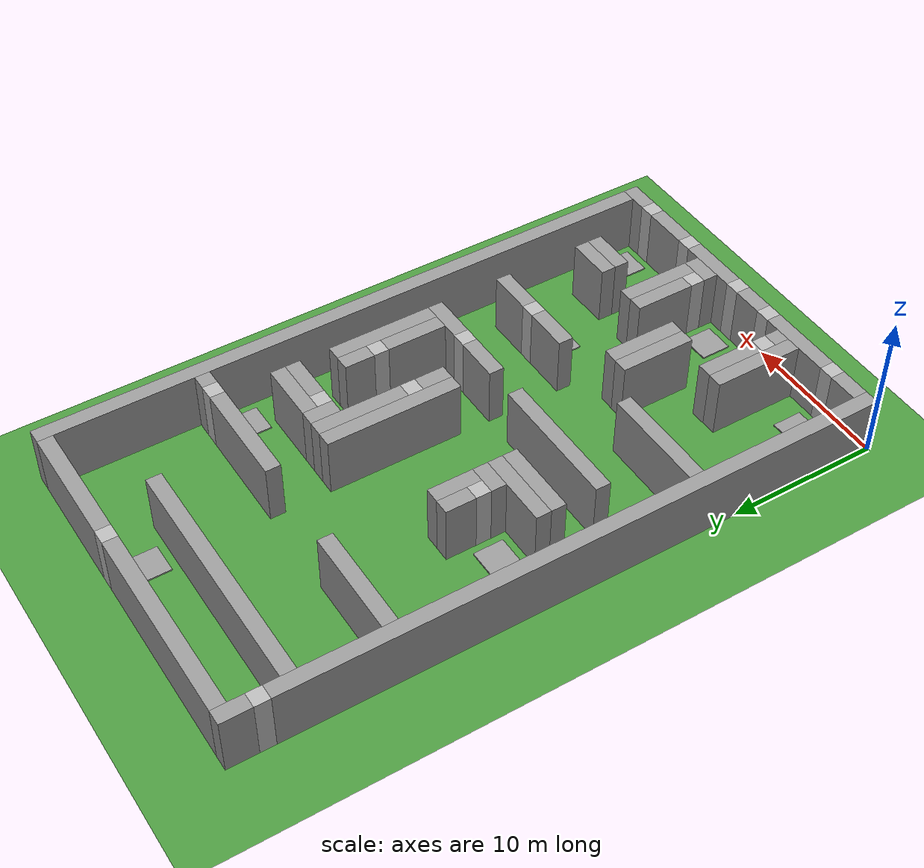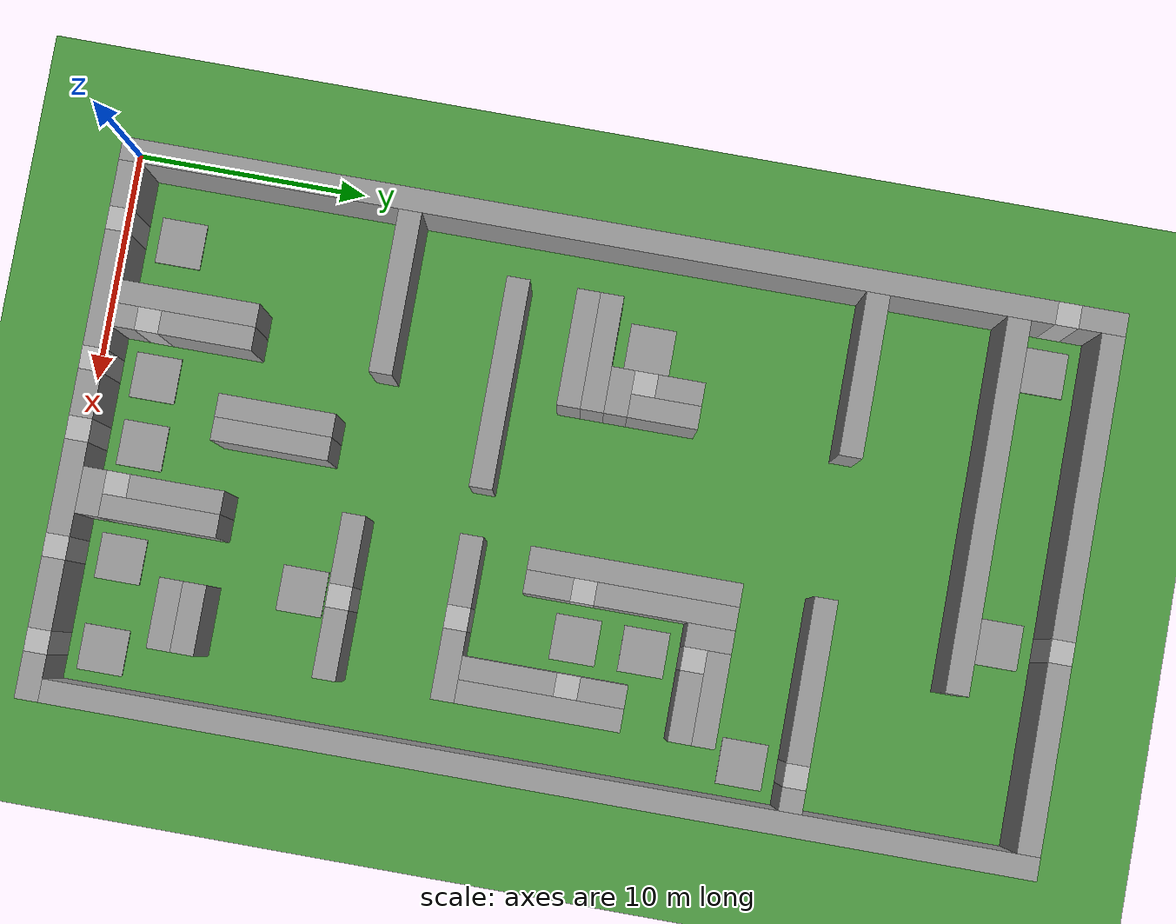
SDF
<sdf version="1.6">
 <world name="default">
  <light name="sun" type="directional">
   <pose>0 0 10 0 -0 0</pose>
   <diffuse>0.8 0.8 0.8 1</diffuse>
   <specular>0.1 0.1 0.1 1</specular>
   <attenuation>
    <range>1000</range>
    <constant>0.9</constant>
    <linear>0.01</linear>
    <quadratic>0.001</quadratic>
   </attenuation>
   <direction>-0.5 0.5 -1</direction>
  </light>
  <model name="ground_plane">
   <static>1</static>
   <link name="link">
    <collision name="collision">
     <geometry><plane><normal>0 0 1</normal><size>100 100</size></plane></geometry>
     <surface><friction><ode><mu>100</mu><mu2>50</mu2></ode></friction></surface>
    </collision>
    <visual name="visual">
     <cast_shadows>0</cast_shadows>
     <geometry><plane><normal>0 0 1</normal><size>100 100</size></plane></geometry>
     <material>
      <script><uri>file://media/materials/scripts/gazebo.material</uri><name>Gazebo/Grass</name></script>
     </material>
    </visual>
   </link>
  </model>
  <gravity>0 0 -9.8</gravity>
  <magnetic_field>6e-06 2.3e-05 -4.2e-05</magnetic_field>
  <atmosphere type="adiabatic"/>
  <physics name="default_physics" default="0" type="ode">
   <max_step_size>0.004</max_step_size>
   <real_time_factor>1</real_time_factor>
   <real_time_update_rate>250</real_time_update_rate>
  </physics>
  <scene><ambient>0.4 0.4 0.4 1</ambient><background>0.7 0.7 0.7 1</background><shadows>1</shadows></scene>
  <spherical_coordinates>
   <surface_model>EARTH_WGS84</surface_model>
   <latitude_deg>0</latitude_deg>
   <longitude_deg>0</longitude_deg>
   <elevation>0</elevation>
   <heading_deg>0</heading_deg>
  </spherical_coordinates>
  <model name="wall">
   <pose>0.500000 20.000000 2 0 0 0</pose>
   <static>1</static>
   <link name="wall-link">
    <collision name="collision"><geometry><box><size>1 40 4</size></box></geometry></collision>
    <visual name="visual">
     <geometry><box><size>1 40 4</size></box></geometry>
     <material>
      <script><name>Gazebo/Grey</name><uri>file://media/materials/scripts/gazebo.material</uri></script>
     </material>
    </visual>
    <gravity>0</gravity>
   </link>
  </model>
  <model name="wall">
   <pose>2.000000 0.500000 2 0 0 0</pose>
   <static>1</static>
   <link name="wall-link">
    <collision name="collision"><geometry><box><size>2 1 4</size></box></geometry></collision>
    <visual name="visual">
     <geometry><box><size>2 1 4</size></box></geometry>
     <material>
      <script><name>Gazebo/Grey</name><uri>file://media/materials/scripts/gazebo.material</uri></script>
     </material>
    </visual>
    <gravity>0</gravity>
   </link>
  </model>
  <model name="wall">
   <pose>6.500000 0.500000 2 0 0 0</pose>
   <static>1</static>
   <link name="wall-link">
    <collision name="collision"><geometry><box><size>5 1 4</size></box></geometry></collision>
    <visual name="visual">
     <geometry><box><size>5 1 4</size></box></geometry>
     <material>
      <script><name>Gazebo/Grey</name><uri>file://media/materials/scripts/gazebo.material</uri></script>
     </material>
    </visual>
    <gravity>0</gravity>
   </link>
  </model>
  <model name="wall">
   <pose>11.000000 0.500000 2 0 0 0</pose>
   <static>1</static>
   <link name="wall-link">
    <collision name="collision"><geometry><box><size>2 1 4</size></box></geometry></collision>
    <visual name="visual">
     <geometry><box><size>2 1 4</size></box></geometry>
     <material>
      <script><name>Gazebo/Grey</name><uri>file://media/materials/scripts/gazebo.material</uri></script>
     </material>
    </visual>
    <gravity>0</gravity>
   </link>
  </model>
  <model name="wall">
   <pose>15.000000 0.500000 2 0 0 0</pose>
   <static>1</static>
   <link name="wall-link">
    <collision name="collision"><geometry><box><size>4 1 4</size></box></geometry></collision>
    <visual name="visual">
     <geometry><box><size>4 1 4</size></box></geometry>
     <material>
      <script><name>Gazebo/Grey</name><uri>file://media/materials/scripts/gazebo.material</uri></script>
     </material>
    </visual>
    <gravity>0</gravity>
   </link>
  </model>
  <model name="wall">
   <pose>19.500000 0.500000 2 0 0 0</pose>
   <static>1</static>
   <link name="wall-link">
    <collision name="collision"><geometry><box><size>3 1 4</size></box></geometry></collision>
    <visual name="visual">
     <geometry><box><size>3 1 4</size></box></geometry>
     <material>
      <script><name>Gazebo/Grey</name><uri>file://media/materials/scripts/gazebo.material</uri></script>
     </material>
    </visual>
    <gravity>0</gravity>
   </link>
  </model>
  <model name="wall">
   <pose>23.000000 0.500000 2 0 0 0</pose>
   <static>1</static>
   <link name="wall-link">
    <collision name="collision"><geometry><box><size>2 1 4</size></box></geometry></collision>
    <visual name="visual">
     <geometry><box><size>2 1 4</size></box></geometry>
     <material>
      <script><name>Gazebo/Grey</name><uri>file://media/materials/scripts/gazebo.material</uri></script>
     </material>
    </visual>
    <gravity>0</gravity>
   </link>
  </model>
  <model name="wall">
   <pose>6.500000 4.000000 2 0 0 0</pose>
   <static>1</static>
   <link name="wall-link">
    <collision name="collision"><geometry><box><size>1 6 4</size></box></geometry></collision>
    <visual name="visual">
     <geometry><box><size>1 6 4</size></box></geometry>
     <material>
      <script><name>Gazebo/Grey</name><uri>file://media/materials/scripts/gazebo.material</uri></script>
     </material>
    </visual>
    <gravity>0</gravity>
   </link>
  </model>
  <model name="wall">
   <pose>7.500000 1.500000 2 0 0 0</pose>
   <static>1</static>
   <link name="wall-link">
    <collision name="collision"><geometry><box><size>1 1 4</size></box></geometry></collision>
    <visual name="visual">
     <geometry><box><size>1 1 4</size></box></geometry>
     <material>
      <script><name>Gazebo/Grey</name><uri>file://media/materials/scripts/gazebo.material</uri></script>
     </material>
    </visual>
    <gravity>0</gravity>
   </link>
  </model>
  <model name="wall">
   <pose>15.000000 1.500000 2 0 0 0</pose>
   <static>1</static>
   <link name="wall-link">
    <collision name="collision"><geometry><box><size>2 1 4</size></box></geometry></collision>
    <visual name="visual">
     <geometry><box><size>2 1 4</size></box></geometry>
     <material>
      <script><name>Gazebo/Grey</name><uri>file://media/materials/scripts/gazebo.material</uri></script>
     </material>
    </visual>
    <gravity>0</gravity>
   </link>
  </model>
  <model name="wall">
   <pose>23.500000 22.000000 2 0 0 0</pose>
   <static>1</static>
   <link name="wall-link">
    <collision name="collision"><geometry><box><size>1 42 4</size></box></geometry></collision>
    <visual name="visual">
     <geometry><box><size>1 42 4</size></box></geometry>
     <material>
      <script><name>Gazebo/Grey</name><uri>file://media/materials/scripts/gazebo.material</uri></script>
     </material>
    </visual>
    <gravity>0</gravity>
   </link>
  </model>
  <model name="wall">
   <pose>15.500000 4.500000 2 0 0 0</pose>
   <static>1</static>
   <link name="wall-link">
    <collision name="collision"><geometry><box><size>1 5 4</size></box></geometry></collision>
    <visual name="visual">
     <geometry><box><size>1 5 4</size></box></geometry>
     <material>
      <script><name>Gazebo/Grey</name><uri>file://media/materials/scripts/gazebo.material</uri></script>
     </material>
    </visual>
    <gravity>0</gravity>
   </link>
  </model>
  <model name="wall">
   <pose>7.500000 5.000000 2 0 0 0</pose>
   <static>1</static>
   <link name="wall-link">
    <collision name="collision"><geometry><box><size>1 4 4</size></box></geometry></collision>
    <visual name="visual">
     <geometry><box><size>1 4 4</size></box></geometry>
     <material>
      <script><name>Gazebo/Grey</name><uri>file://media/materials/scripts/gazebo.material</uri></script>
     </material>
    </visual>
    <gravity>0</gravity>
   </link>
  </model>
  <model name="wall">
   <pose>14.500000 5.000000 2 0 0 0</pose>
   <static>1</static>
   <link name="wall-link">
    <collision name="collision"><geometry><box><size>1 4 4</size></box></geometry></collision>
    <visual name="visual">
     <geometry><box><size>1 4 4</size></box></geometry>
     <material>
      <script><name>Gazebo/Grey</name><uri>file://media/materials/scripts/gazebo.material</uri></script>
     </material>
    </visual>
    <gravity>0</gravity>
   </link>
  </model>
  <model name="wall">
   <pose>19.500000 5.500000 2 0 0 0</pose>
   <static>1</static>
   <link name="wall-link">
    <collision name="collision"><geometry><box><size>3 1 4</size></box></geometry></collision>
    <visual name="visual">
     <geometry><box><size>3 1 4</size></box></geometry>
     <material>
      <script><name>Gazebo/Grey</name><uri>file://media/materials/scripts/gazebo.material</uri></script>
     </material>
    </visual>
    <gravity>0</gravity>
   </link>
  </model>
  <model name="wall">
   <pose>10.500000 8.500000 2 0 0 0</pose>
   <static>1</static>
   <link name="wall-link">
    <collision name="collision"><geometry><box><size>1 5 4</size></box></geometry></collision>
    <visual name="visual">
     <geometry><box><size>1 5 4</size></box></geometry>
     <material>
      <script><name>Gazebo/Grey</name><uri>file://media/materials/scripts/gazebo.material</uri></script>
     </material>
    </visual>
    <gravity>0</gravity>
   </link>
  </model>
  <model name="wall">
   <pose>11.500000 8.500000 2 0 0 0</pose>
   <static>1</static>
   <link name="wall-link">
    <collision name="collision"><geometry><box><size>1 5 4</size></box></geometry></collision>
    <visual name="visual">
     <geometry><box><size>1 5 4</size></box></geometry>
     <material>
      <script><name>Gazebo/Grey</name><uri>file://media/materials/scripts/gazebo.material</uri></script>
     </material>
    </visual>
    <gravity>0</gravity>
   </link>
  </model>
  <model name="wall">
   <pose>19.500000 6.500000 2 0 0 0</pose>
   <static>1</static>
   <link name="wall-link">
    <collision name="collision"><geometry><box><size>3 1 4</size></box></geometry></collision>
    <visual name="visual">
     <geometry><box><size>3 1 4</size></box></geometry>
     <material>
      <script><name>Gazebo/Grey</name><uri>file://media/materials/scripts/gazebo.material</uri></script>
     </material>
    </visual>
    <gravity>0</gravity>
   </link>
  </model>
  <model name="wall">
   <pose>4.500000 12.500000 2 0 0 0</pose>
   <static>1</static>
   <link name="wall-link">
    <collision name="collision"><geometry><box><size>7 1 4</size></box></geometry></collision>
    <visual name="visual">
     <geometry><box><size>7 1 4</size></box></geometry>
     <material>
      <script><name>Gazebo/Grey</name><uri>file://media/materials/scripts/gazebo.material</uri></script>
     </material>
    </visual>
    <gravity>0</gravity>
   </link>
  </model>
  <model name="wall">
   <pose>15.500000 12.500000 2 0 0 0</pose>
   <static>1</static>
   <link name="wall-link">
    <collision name="collision"><geometry><box><size>3 1 4</size></box></geometry></collision>
    <visual name="visual">
     <geometry><box><size>3 1 4</size></box></geometry>
     <material>
      <script><name>Gazebo/Grey</name><uri>file://media/materials/scripts/gazebo.material</uri></script>
     </material>
    </visual>
    <gravity>0</gravity>
   </link>
  </model>
  <model name="wall">
   <pose>19.500000 12.500000 2 0 0 0</pose>
   <static>1</static>
   <link name="wall-link">
    <collision name="collision"><geometry><box><size>3 1 4</size></box></geometry></collision>
    <visual name="visual">
     <geometry><box><size>3 1 4</size></box></geometry>
     <material>
      <script><name>Gazebo/Grey</name><uri>file://media/materials/scripts/gazebo.material</uri></script>
     </material>
    </visual>
    <gravity>0</gravity>
   </link>
  </model>
  <model name="wall">
   <pose>7.500000 17.500000 2 0 0 0</pose>
   <static>1</static>
   <link name="wall-link">
    <collision name="collision"><geometry><box><size>9 1 4</size></box></geometry></collision>
    <visual name="visual">
     <geometry><box><size>9 1 4</size></box></geometry>
     <material>
      <script><name>Gazebo/Grey</name><uri>file://media/materials/scripts/gazebo.material</uri></script>
     </material>
    </visual>
    <gravity>0</gravity>
   </link>
  </model>
  <model name="wall">
   <pose>15.500000 17.500000 2 0 0 0</pose>
   <static>1</static>
   <link name="wall-link">
    <collision name="collision"><geometry><box><size>3 1 4</size></box></geometry></collision>
    <visual name="visual">
     <geometry><box><size>3 1 4</size></box></geometry>
     <material>
      <script><name>Gazebo/Grey</name><uri>file://media/materials/scripts/gazebo.material</uri></script>
     </material>
    </visual>
    <gravity>0</gravity>
   </link>
  </model>
  <model name="wall">
   <pose>19.500000 17.500000 2 0 0 0</pose>
   <static>1</static>
   <link name="wall-link">
    <collision name="collision"><geometry><box><size>3 1 4</size></box></geometry></collision>
    <visual name="visual">
     <geometry><box><size>3 1 4</size></box></geometry>
     <material>
      <script><name>Gazebo/Grey</name><uri>file://media/materials/scripts/gazebo.material</uri></script>
     </material>
    </visual>
    <gravity>0</gravity>
   </link>
  </model>
  <model name="wall">
   <pose>19.500000 20.000000 2 0 0 0</pose>
   <static>1</static>
   <link name="wall-link">
    <collision name="collision"><geometry><box><size>1 4 4</size></box></geometry></collision>
    <visual name="visual">
     <geometry><box><size>1 4 4</size></box></geometry>
     <material>
      <script><name>Gazebo/Grey</name><uri>file://media/materials/scripts/gazebo.material</uri></script>
     </material>
    </visual>
    <gravity>0</gravity>
   </link>
  </model>
  <model name="wall">
   <pose>20.500000 21.500000 2 0 0 0</pose>
   <static>1</static>
   <link name="wall-link">
    <collision name="collision"><geometry><box><size>1 7 4</size></box></geometry></collision>
    <visual name="visual">
     <geometry><box><size>1 7 4</size></box></geometry>
     <material>
      <script><name>Gazebo/Grey</name><uri>file://media/materials/scripts/gazebo.material</uri></script>
     </material>
    </visual>
    <gravity>0</gravity>
   </link>
  </model>
  <model name="wall">
   <pose>5.500000 20.500000 2 0 0 0</pose>
   <static>1</static>
   <link name="wall-link">
    <collision name="collision"><geometry><box><size>5 1 4</size></box></geometry></collision>
    <visual name="visual">
     <geometry><box><size>5 1 4</size></box></geometry>
     <material>
      <script><name>Gazebo/Grey</name><uri>file://media/materials/scripts/gazebo.material</uri></script>
     </material>
    </visual>
    <gravity>0</gravity>
   </link>
  </model>
  <model name="wall">
   <pose>14.500000 24.500000 2 0 0 0</pose>
   <static>1</static>
   <link name="wall-link">
    <collision name="collision"><geometry><box><size>1 9 4</size></box></geometry></collision>
    <visual name="visual">
     <geometry><box><size>1 9 4</size></box></geometry>
     <material>
      <script><name>Gazebo/Grey</name><uri>file://media/materials/scripts/gazebo.material</uri></script>
     </material>
    </visual>
    <gravity>0</gravity>
   </link>
  </model>
  <model name="wall">
   <pose>15.500000 21.000000 2 0 0 0</pose>
   <static>1</static>
   <link name="wall-link">
    <collision name="collision"><geometry><box><size>1 2 4</size></box></geometry></collision>
    <visual name="visual">
     <geometry><box><size>1 2 4</size></box></geometry>
     <material>
      <script><name>Gazebo/Grey</name><uri>file://media/materials/scripts/gazebo.material</uri></script>
     </material>
    </visual>
    <gravity>0</gravity>
   </link>
  </model>
  <model name="wall">
   <pose>5.500000 21.500000 2 0 0 0</pose>
   <static>1</static>
   <link name="wall-link">
    <collision name="collision"><geometry><box><size>5 1 4</size></box></geometry></collision>
    <visual name="visual">
     <geometry><box><size>5 1 4</size></box></geometry>
     <material>
      <script><name>Gazebo/Grey</name><uri>file://media/materials/scripts/gazebo.material</uri></script>
     </material>
    </visual>
    <gravity>0</gravity>
   </link>
  </model>
  <model name="wall">
   <pose>7.000000 22.500000 2 0 0 0</pose>
   <static>1</static>
   <link name="wall-link">
    <collision name="collision"><geometry><box><size>2 1 4</size></box></geometry></collision>
    <visual name="visual">
     <geometry><box><size>2 1 4</size></box></geometry>
     <material>
      <script><name>Gazebo/Grey</name><uri>file://media/materials/scripts/gazebo.material</uri></script>
     </material>
    </visual>
    <gravity>0</gravity>
   </link>
  </model>
  <model name="wall">
   <pose>7.500000 24.500000 2 0 0 0</pose>
   <static>1</static>
   <link name="wall-link">
    <collision name="collision"><geometry><box><size>1 3 4</size></box></geometry></collision>
    <visual name="visual">
     <geometry><box><size>1 3 4</size></box></geometry>
     <material>
      <script><name>Gazebo/Grey</name><uri>file://media/materials/scripts/gazebo.material</uri></script>
     </material>
    </visual>
    <gravity>0</gravity>
   </link>
  </model>
  <model name="wall">
   <pose>15.500000 26.000000 2 0 0 0</pose>
   <static>1</static>
   <link name="wall-link">
    <collision name="collision"><geometry><box><size>1 6 4</size></box></geometry></collision>
    <visual name="visual">
     <geometry><box><size>1 6 4</size></box></geometry>
     <material>
      <script><name>Gazebo/Grey</name><uri>file://media/materials/scripts/gazebo.material</uri></script>
     </material>
    </visual>
    <gravity>0</gravity>
   </link>
  </model>
  <model name="wall">
   <pose>19.500000 24.000000 2 0 0 0</pose>
   <static>1</static>
   <link name="wall-link">
    <collision name="collision"><geometry><box><size>1 2 4</size></box></geometry></collision>
    <visual name="visual">
     <geometry><box><size>1 2 4</size></box></geometry>
     <material>
      <script><name>Gazebo/Grey</name><uri>file://media/materials/scripts/gazebo.material</uri></script>
     </material>
    </visual>
    <gravity>0</gravity>
   </link>
  </model>
  <model name="wall">
   <pose>6.500000 25.000000 2 0 0 0</pose>
   <static>1</static>
   <link name="wall-link">
    <collision name="collision"><geometry><box><size>1 2 4</size></box></geometry></collision>
    <visual name="visual">
     <geometry><box><size>1 2 4</size></box></geometry>
     <material>
      <script><name>Gazebo/Grey</name><uri>file://media/materials/scripts/gazebo.material</uri></script>
     </material>
    </visual>
    <gravity>0</gravity>
   </link>
  </model>
  <model name="wall">
   <pose>16.500000 28.000000 2 0 0 0</pose>
   <static>1</static>
   <link name="wall-link">
    <collision name="collision"><geometry><box><size>1 2 4</size></box></geometry></collision>
    <visual name="visual">
     <geometry><box><size>1 2 4</size></box></geometry>
     <material>
      <script><name>Gazebo/Grey</name><uri>file://media/materials/scripts/gazebo.material</uri></script>
     </material>
    </visual>
    <gravity>0</gravity>
   </link>
  </model>
  <model name="wall">
   <pose>19.500000 27.500000 2 0 0 0</pose>
   <static>1</static>
   <link name="wall-link">
    <collision name="collision"><geometry><box><size>3 1 4</size></box></geometry></collision>
    <visual name="visual">
     <geometry><box><size>3 1 4</size></box></geometry>
     <material>
      <script><name>Gazebo/Grey</name><uri>file://media/materials/scripts/gazebo.material</uri></script>
     </material>
    </visual>
    <gravity>0</gravity>
   </link>
  </model>
  <model name="wall">
   <pose>19.000000 28.500000 2 0 0 0</pose>
   <static>1</static>
   <link name="wall-link">
    <collision name="collision"><geometry><box><size>4 1 4</size></box></geometry></collision>
    <visual name="visual">
     <geometry><box><size>4 1 4</size></box></geometry>
     <material>
      <script><name>Gazebo/Grey</name><uri>file://media/materials/scripts/gazebo.material</uri></script>
     </material>
    </visual>
    <gravity>0</gravity>
   </link>
  </model>
  <model name="wall">
   <pose>4.500000 32.500000 2 0 0 0</pose>
   <static>1</static>
   <link name="wall-link">
    <collision name="collision"><geometry><box><size>7 1 4</size></box></geometry></collision>
    <visual name="visual">
     <geometry><box><size>7 1 4</size></box></geometry>
     <material>
      <script><name>Gazebo/Grey</name><uri>file://media/materials/scripts/gazebo.material</uri></script>
     </material>
    </visual>
    <gravity>0</gravity>
   </link>
  </model>
  <model name="wall">
   <pose>17.500000 32.500000 2 0 0 0</pose>
   <static>1</static>
   <link name="wall-link">
    <collision name="collision"><geometry><box><size>7 1 4</size></box></geometry></collision>
    <visual name="visual">
     <geometry><box><size>7 1 4</size></box></geometry>
     <material>
      <script><name>Gazebo/Grey</name><uri>file://media/materials/scripts/gazebo.material</uri></script>
     </material>
    </visual>
    <gravity>0</gravity>
   </link>
  </model>
  <model name="wall">
   <pose>22.500000 32.500000 2 0 0 0</pose>
   <static>1</static>
   <link name="wall-link">
    <collision name="collision"><geometry><box><size>1 1 4</size></box></geometry></collision>
    <visual name="visual">
     <geometry><box><size>1 1 4</size></box></geometry>
     <material>
      <script><name>Gazebo/Grey</name><uri>file://media/materials/scripts/gazebo.material</uri></script>
     </material>
    </visual>
    <gravity>0</gravity>
   </link>
  </model>
  <model name="wall">
   <pose>9.000000 38.500000 2 0 0 0</pose>
   <static>1</static>
   <link name="wall-link">
    <collision name="collision"><geometry><box><size>16 1 4</size></box></geometry></collision>
    <visual name="visual">
     <geometry><box><size>16 1 4</size></box></geometry>
     <material>
      <script><name>Gazebo/Grey</name><uri>file://media/materials/scripts/gazebo.material</uri></script>
     </material>
    </visual>
    <gravity>0</gravity>
   </link>
  </model>
  <model name="wall">
   <pose>0.500000 42.000000 2 0 0 0</pose>
   <static>1</static>
   <link name="wall-link">
    <collision name="collision"><geometry><box><size>1 2 4</size></box></geometry></collision>
    <visual name="visual">
     <geometry><box><size>1 2 4</size></box></geometry>
     <material>
      <script><name>Gazebo/Grey</name><uri>file://media/materials/scripts/gazebo.material</uri></script>
     </material>
    </visual>
    <gravity>0</gravity>
   </link>
  </model>
  <model name="wall">
   <pose>7.500000 42.500000 2 0 0 0</pose>
   <static>1</static>
   <link name="wall-link">
    <collision name="collision"><geometry><box><size>13 1 4</size></box></geometry></collision>
    <visual name="visual">
     <geometry><box><size>13 1 4</size></box></geometry>
     <material>
      <script><name>Gazebo/Grey</name><uri>file://media/materials/scripts/gazebo.material</uri></script>
     </material>
    </visual>
    <gravity>0</gravity>
   </link>
  </model>
  <model name="wall">
   <pose>19.000000 42.500000 2 0 0 0</pose>
   <static>1</static>
   <link name="wall-link">
    <collision name="collision"><geometry><box><size>8 1 4</size></box></geometry></collision>
    <visual name="visual">
     <geometry><box><size>8 1 4</size></box></geometry>
     <material>
      <script><name>Gazebo/Grey</name><uri>file://media/materials/scripts/gazebo.material</uri></script>
     </material>
    </visual>
    <gravity>0</gravity>
   </link>
  </model>
  <include><uri>model://numberbox7</uri><pose>3.5 0.5 2 0 -0 0</pose></include>
  <include><uri>model://numberbox8</uri><pose>9.5 0.5 2 0 -0 0</pose></include>
  <include><uri>model://numberbox7</uri><pose>12.5 0.5 2 0 -0 0</pose></include>
  <include><uri>model://numberbox5</uri><pose>17.5 0.5 2 0 -0 0</pose></include>
  <include><uri>model://numberbox4</uri><pose>21.5 0.5 2 0 -0 0</pose></include>
  <model name="goal">
   <pose>3.5 2.5 0.05 0 -0 0</pose>
   <static>1</static>
   <link name="link">
    <collision name="collision"><geometry><box><size>2.0 2.0 0.1</size></box></geometry></collision>
    <visual name="visual">
     <geometry><box><size>2.0 2.0 0.1</size></box></geometry>
     <material>
      <script><name>Gazebo/Grey</name><uri>file://media/materials/scripts/gazebo.material</uri></script>
     </material>
    </visual>
   </link>
  </model>
  <include><uri>model://numberbox9</uri><pose>7.5 2.5 2 0 -0 0</pose></include>
  <model name="goal">
   <pose>9.5 2.5 0.05 0 -0 0</pose>
   <static>1</static>
   <link name="link">
    <collision name="collision"><geometry><box><size>2.0 2.0 0.1</size></box></geometry></collision>
    <visual name="visual">
     <geometry><box><size>2.0 2.0 0.1</size></box></geometry>
     <material>
      <script><name>Gazebo/Grey</name><uri>file://media/materials/scripts/gazebo.material</uri></script>
     </material>
    </visual>
   </link>
  </model>
  <model name="goal">
   <pose>12.5 2.5 0.05 0 -0 0</pose>
   <static>1</static>
   <link name="link">
    <collision name="collision"><geometry><box><size>2.0 2.0 0.1</size></box></geometry></collision>
    <visual name="visual">
     <geometry><box><size>2.0 2.0 0.1</size></box></geometry>
     <material>
      <script><name>Gazebo/Grey</name><uri>file://media/materials/scripts/gazebo.material</uri></script>
     </material>
    </visual>
   </link>
  </model>
  <include><uri>model://numberbox6</uri><pose>14.5 2.5 2 0 -0 0</pose></include>
  <model name="goal">
   <pose>17.5 2.5 0.05 0 -0 0</pose>
   <static>1</static>
   <link name="link">
    <collision name="collision"><geometry><box><size>2.0 2.0 0.1</size></box></geometry></collision>
    <visual name="visual">
     <geometry><box><size>2.0 2.0 0.1</size></box></geometry>
     <material>
      <script><name>Gazebo/Grey</name><uri>file://media/materials/scripts/gazebo.material</uri></script>
     </material>
    </visual>
   </link>
  </model>
  <model name="goal">
   <pose>21.5 2.5 0.05 0 -0 0</pose>
   <static>1</static>
   <link name="link">
    <collision name="collision"><geometry><box><size>2.0 2.0 0.1</size></box></geometry></collision>
    <visual name="visual">
     <geometry><box><size>2.0 2.0 0.1</size></box></geometry>
     <material>
      <script><name>Gazebo/Grey</name><uri>file://media/materials/scripts/gazebo.material</uri></script>
     </material>
    </visual>
   </link>
  </model>
  <model name="goal">
   <pose>17.5 10.5 0.05 0 -0 0</pose>
   <static>1</static>
   <link name="link">
    <collision name="collision"><geometry><box><size>2.0 2.0 0.1</size></box></geometry></collision>
    <visual name="visual">
     <geometry><box><size>2.0 2.0 0.1</size></box></geometry>
     <material>
      <script><name>Gazebo/Grey</name><uri>file://media/materials/scripts/gazebo.material</uri></script>
     </material>
    </visual>
   </link>
  </model>
  <include><uri>model://numberbox5</uri><pose>17.5 12.5 2 0 -0 0</pose></include>
  <include><uri>model://numberbox3</uri><pose>17.5 17.5 2 0 -0 0</pose></include>
  <include><uri>model://numberbox6</uri><pose>15.5 22.5 2 0 -0 0</pose></include>
  <model name="goal">
   <pose>17.5 22.5 0.05 0 -0 0</pose>
   <static>1</static>
   <link name="link">
    <collision name="collision"><geometry><box><size>2.0 2.0 0.1</size></box></geometry></collision>
    <visual name="visual">
     <geometry><box><size>2.0 2.0 0.1</size></box></geometry>
     <material>
      <script><name>Gazebo/Grey</name><uri>file://media/materials/scripts/gazebo.material</uri></script>
     </material>
    </visual>
   </link>
  </model>
  <include><uri>model://numberbox9</uri><pose>19.5 22.5 2 0 -0 0</pose></include>
  <model name="goal">
   <pose>4.5 23.5 0.05 0 -0 0</pose>
   <static>1</static>
   <link name="link">
    <collision name="collision"><geometry><box><size>2.0 2.0 0.1</size></box></geometry></collision>
    <visual name="visual">
     <geometry><box><size>2.0 2.0 0.1</size></box></geometry>
     <material>
      <script><name>Gazebo/Grey</name><uri>file://media/materials/scripts/gazebo.material</uri></script>
     </material>
    </visual>
   </link>
  </model>
  <include><uri>model://numberbox8</uri><pose>6.5 23.5 2 0 -0 0</pose></include>
  <model name="goal">
   <pose>17.5 25.5 0.05 0 -0 0</pose>
   <static>1</static>
   <link name="link">
    <collision name="collision"><geometry><box><size>2.0 2.0 0.1</size></box></geometry></collision>
    <visual name="visual">
     <geometry><box><size>2.0 2.0 0.1</size></box></geometry>
     <material>
      <script><name>Gazebo/Grey</name><uri>file://media/materials/scripts/gazebo.material</uri></script>
     </material>
    </visual>
   </link>
  </model>
  <include><uri>model://numberbox7</uri><pose>17.5 27.5 2 0 -0 0</pose></include>
  <model name="goal">
   <pose>21.5 30.5 0.05 0 -0 0</pose>
   <static>1</static>
   <link name="link">
    <collision name="collision"><geometry><box><size>2.0 2.0 0.1</size></box></geometry></collision>
    <visual name="visual">
     <geometry><box><size>2.0 2.0 0.1</size></box></geometry>
     <material>
      <script><name>Gazebo/Grey</name><uri>file://media/materials/scripts/gazebo.material</uri></script>
     </material>
    </visual>
   </link>
  </model>
  <include><uri>model://numberbox1</uri><pose>21.5 32.5 2 0 -0 0</pose></include>
  <include><uri>model://numberbox1</uri><pose>0.5 40.5 2 0 -0 0</pose></include>
  <model name="goal">
   <pose>2.5 40.5 0.05 0 -0 0</pose>
   <static>1</static>
   <link name="link">
    <collision name="collision"><geometry><box><size>2.0 2.0 0.1</size></box></geometry></collision>
    <visual name="visual">
     <geometry><box><size>2.0 2.0 0.1</size></box></geometry>
     <material>
      <script><name>Gazebo/Grey</name><uri>file://media/materials/scripts/gazebo.material</uri></script>
     </material>
    </visual>
   </link>
  </model>
  <model name="goal">
   <pose>14.5 40.5 0.05 0 -0 0</pose>
   <static>1</static>
   <link name="link">
    <collision name="collision"><geometry><box><size>2.0 2.0 0.1</size></box></geometry></collision>
    <visual name="visual">
     <geometry><box><size>2.0 2.0 0.1</size></box></geometry>
     <material>
      <script><name>Gazebo/Grey</name><uri>file://media/materials/scripts/gazebo.material</uri></script>
     </material>
    </visual>
   </link>
  </model>
  <include><uri>model://numberbox9</uri><pose>14.5 42.5 2 0 -0 0</pose></include>
 </world>
</sdf>

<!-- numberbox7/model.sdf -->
<sdf version="1.5">
  <model name="box">
    <static>false</static>
    <link name="base">
      <inertial>
        <mass>1</mass>
        <inertia>
          <ixx>0.166667</ixx>
          <ixy>0</ixy>
          <ixz>0</ixz>
          <iyy>0.166667</iyy>
          <iyz>0</iyz>
          <izz>0.166667</izz>
        </inertia>
      </inertial>
      <collision name="collision">
        <geometry>
            <box>
                <size>1 1 4</size>
            </box>
        </geometry>
      </collision>
      <visual name="visual">
        <geometry>
          <mesh>
            <uri>model://numberbox/meshes/number7.dae</uri>
          </mesh>
        </geometry>
      </visual>
    </link>
  </model>
</sdf>

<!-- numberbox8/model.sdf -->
<sdf version="1.5">
  <model name="box">
    <static>false</static>
    <link name="base">
      <inertial>
        <mass>1</mass>
        <inertia>
          <ixx>0.166667</ixx>
          <ixy>0</ixy>
          <ixz>0</ixz>
          <iyy>0.166667</iyy>
          <iyz>0</iyz>
          <izz>0.166667</izz>
        </inertia>
      </inertial>
      <collision name="collision">
        <geometry>
            <box>
                <size>1 1 4</size>
            </box>
        </geometry>
      </collision>
      <visual name="visual">
        <geometry>
          <mesh>
            <uri>model://numberbox/meshes/number8.dae</uri>
          </mesh>
        </geometry>
      </visual>
    </link>
  </model>
</sdf>

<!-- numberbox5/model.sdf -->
<sdf version="1.5">
  <model name="box">
    <static>false</static>
    <link name="base">
      <inertial>
        <mass>1</mass>
        <inertia>
          <ixx>0.166667</ixx>
          <ixy>0</ixy>
          <ixz>0</ixz>
          <iyy>0.166667</iyy>
          <iyz>0</iyz>
          <izz>0.166667</izz>
        </inertia>
      </inertial>
      <collision name="collision">
        <geometry>
            <box>
                <size>1 1 4</size>
            </box>
        </geometry>
      </collision>
      <visual name="visual">
        <geometry>
          <mesh>
            <uri>model://numberbox/meshes/number5.dae</uri>
          </mesh>
        </geometry>
      </visual>
    </link>
  </model>
</sdf>

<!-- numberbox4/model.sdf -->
<sdf version="1.5">
  <model name="box">
    <static>false</static>
    <link name="base">
      <inertial>
        <mass>1</mass>
        <inertia>
          <ixx>0.166667</ixx>
          <ixy>0</ixy>
          <ixz>0</ixz>
          <iyy>0.166667</iyy>
          <iyz>0</iyz>
          <izz>0.166667</izz>
        </inertia>
      </inertial>
      <collision name="collision">
        <geometry>
            <box>
                <size>1 1 4</size>
            </box>
        </geometry>
      </collision>
      <visual name="visual">
        <geometry>
          <mesh>
            <uri>model://numberbox/meshes/number4.dae</uri>
          </mesh>
        </geometry>
      </visual>
    </link>
  </model>
</sdf>

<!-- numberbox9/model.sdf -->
<sdf version="1.5">
  <model name="box">
    <static>false</static>
    <link name="base">
      <inertial>
        <mass>1</mass>
        <inertia>
          <ixx>0.166667</ixx>
          <ixy>0</ixy>
          <ixz>0</ixz>
          <iyy>0.166667</iyy>
          <iyz>0</iyz>
          <izz>0.166667</izz>
        </inertia>
      </inertial>
      <collision name="collision">
        <geometry>
            <box>
                <size>1 1 4</size>
            </box>
        </geometry>
      </collision>
      <visual name="visual">
        <geometry>
          <mesh>
            <uri>model://numberbox/meshes/number9.dae</uri>
          </mesh>
        </geometry>
      </visual>
    </link>
  </model>
</sdf>

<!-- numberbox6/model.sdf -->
<sdf version="1.5">
  <model name="box">
    <static>false</static>
    <link name="base">
      <inertial>
        <mass>1</mass>
        <inertia>
          <ixx>0.166667</ixx>
          <ixy>0</ixy>
          <ixz>0</ixz>
          <iyy>0.166667</iyy>
          <iyz>0</iyz>
          <izz>0.166667</izz>
        </inertia>
      </inertial>
      <collision name="collision">
        <geometry>
            <box>
                <size>1 1 4</size>
            </box>
        </geometry>
      </collision>
      <visual name="visual">
        <geometry>
          <mesh>
            <uri>model://numberbox/meshes/number6.dae</uri>
          </mesh>
        </geometry>
      </visual>
    </link>
  </model>
</sdf>

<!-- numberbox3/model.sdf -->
<sdf version="1.5">
  <model name="box">
    <static>false</static>
    <link name="base">
      <inertial>
        <mass>1</mass>
        <inertia>
          <ixx>0.166667</ixx>
          <ixy>0</ixy>
          <ixz>0</ixz>
          <iyy>0.166667</iyy>
          <iyz>0</iyz>
          <izz>0.166667</izz>
        </inertia>
      </inertial>
      <collision name="collision">
        <geometry>
            <box>
                <size>1 1 4</size>
            </box>
        </geometry>
      </collision>
      <visual name="visual">
        <geometry>
          <mesh>
            <uri>model://numberbox/meshes/number3.dae</uri>
          </mesh>
        </geometry>
      </visual>
    </link>
  </model>
</sdf>

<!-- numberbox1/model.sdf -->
<sdf version="1.5">
  <model name="box">
    <static>false</static>
    <link name="base">
      <inertial>
        <mass>1</mass>
        <inertia>
          <ixx>0.166667</ixx>
          <ixy>0</ixy>
          <ixz>0</ixz>
          <iyy>0.166667</iyy>
          <iyz>0</iyz>
          <izz>0.166667</izz>
        </inertia>
      </inertial>
      <collision name="collision">
        <geometry>
            <box>
                <size>1 1 4</size>
            </box>
        </geometry>
      </collision>
      <visual name="visual">
        <geometry>
          <mesh>
            <uri>model://numberbox/meshes/number1.dae</uri>
          </mesh>
        </geometry>
      </visual>
    </link>
  </model>
</sdf>
